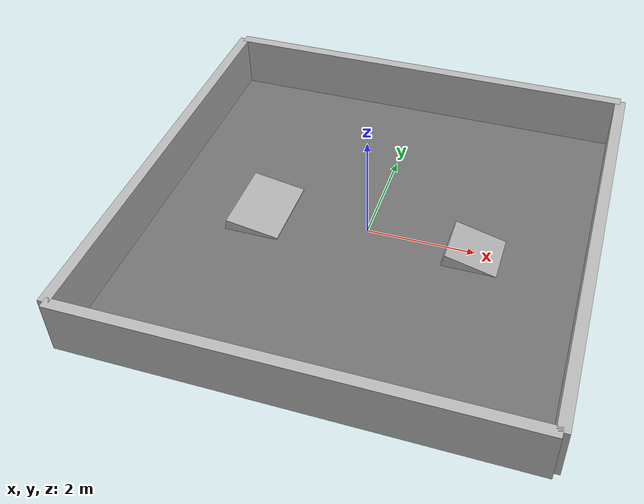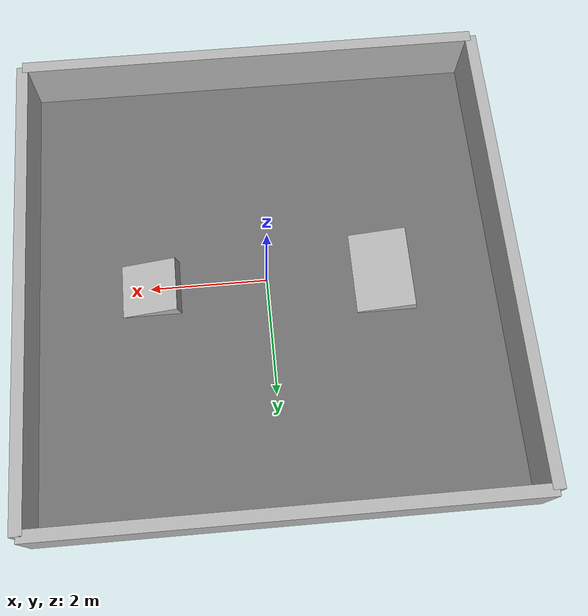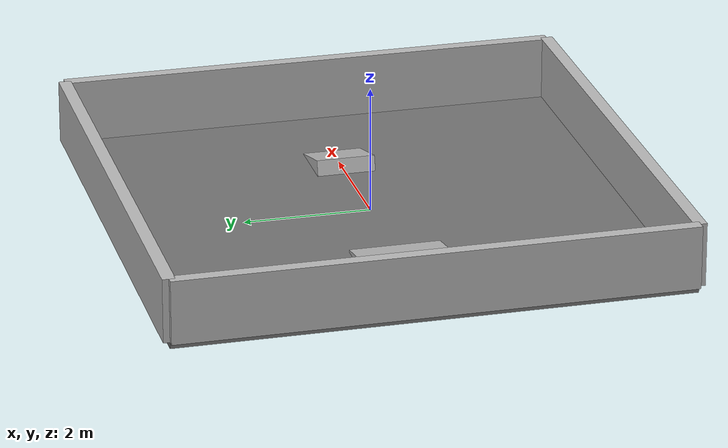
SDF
<sdf version='1.10'>
  <world name='empty'>
    <!-- Physics: realistic & consistent on basic machines -->
    <physics name="ode_cpu" type="ode">
      <!-- 500 Hz sim tick; good balance for CPU-only -->
      <max_step_size>0.002</max_step_size>
      <real_time_update_rate>500</real_time_update_rate>
      <real_time_factor>1.0</real_time_factor>
      <ode>
        <solver>
          <type>quick</type>
          <iters>50</iters>
          <sor>1.3</sor>
        </solver>
        <!-- Contact params tuned for stable, non-bouncy flips -->
        <constraints>
          <cfm>0.0</cfm>
          <erp>0.2</erp>
        </constraints>
      </ode>
    </physics>

    <plugin name='gz::sim::systems::Physics' filename='gz-sim-physics-system'/>
    <plugin name='gz::sim::systems::UserCommands' filename='gz-sim-user-commands-system'/>
    <plugin name='gz::sim::systems::SceneBroadcaster' filename='gz-sim-scene-broadcaster-system'/>
    <plugin name='gz::sim::systems::Contact' filename='gz-sim-contact-system'/>

     <!-- Earth gravity -->
    <gravity>0 0 -9.81</gravity>

    <magnetic_field>5.5644999999999998e-06 2.2875799999999999e-05 -4.2388400000000002e-05</magnetic_field>
    <atmosphere type='adiabatic'/>

    <!-- Lighting: simple, stable; shadows off by default -->
    <scene>
      <ambient>0.5 0.5 0.5 1</ambient>
      <background>0.7 0.7 0.75 1</background>
      <shadows>false</shadows>
    </scene>

    <!-- 8m x 8m arena floor with realistic surface params -->
    <model name="arena_floor">
      <static>true</static>
      <pose>0 0 -0.05 0 0 0</pose>
      <link name="floor">
        <collision name="col">
          <geometry><box><size>8 8 0.1</size></box></geometry>
          <surface>
            <!-- Rubber-ish tires on painted plywood/concrete -->
            <friction>
              <ode>
                <mu>0.9</mu>
                <mu2>0.9</mu2>
                <fdir1>1 0 0</fdir1>
              </ode>
            </friction>
            <bounce>
              <restitution_coefficient>0.03</restitution_coefficient>
              <threshold>1e3</threshold>
            </bounce>
            <contact>
              <ode>
                <kp>1e6</kp>
                <kd>1e3</kd>
                <max_vel>1.0</max_vel>
                <min_depth>0.001</min_depth>
              </ode>
            </contact>
          </surface>
        </collision>
        <visual name="vis">
          <geometry><box><size>8 8 0.1</size></box></geometry>
          <material>
            <ambient>0.35 0.35 0.35 1</ambient>
            <diffuse>0.45 0.45 0.45 1</diffuse>
          </material>
        </visual>
      </link>
    </model>
    <!-- Perimeter walls (1.0m high) -->
    <model name="wall_north">
      <static>true</static>
      <link name="link">
        <pose>0 4 0.5 0 0 0</pose>
        <collision name="col"><geometry><box><size>8 0.2 1.0</size></box></geometry></collision>
        <visual name="vis"><geometry><box><size>8 0.2 1.0</size></box></geometry></visual>
      </link>
    </model>
    <model name="wall_south">
      <static>true</static>
      <link name="link">
        <pose>0 -4 0.5 0 0 0</pose>
        <collision name="col"><geometry><box><size>8 0.2 1.0</size></box></geometry></collision>
        <visual name="vis"><geometry><box><size>8 0.2 1.0</size></box></geometry></visual>
      </link>
    </model>
    <model name="wall_east">
      <static>true</static>
      <link name="link">
        <pose>4 0 0.5 0 0 0</pose>
        <collision name="col"><geometry><box><size>0.2 8 1.0</size></box></geometry></collision>
        <visual name="vis"><geometry><box><size>0.2 8 1.0</size></box></geometry></visual>
      </link>
    </model>
    <model name="wall_west">
      <static>true</static>
      <link name="link">
        <pose>-4 0 0.5 0 0 0</pose>
        <collision name="col"><geometry><box><size>0.2 8 1.0</size></box></geometry></collision>
        <visual name="vis"><geometry><box><size>0.2 8 1.0</size></box></geometry></visual>
      </link>
    </model>

    <!-- Gentle ramps: 10° and 15°, climbable, simple collision -->
    <model name="ramp_10_deg">
      <static>true</static>
      <link name="link">
        <!-- pitch ≈ 10° (0.1745 rad) -->
        <pose>-2 0 0 0 0.1745 0</pose>
        <collision name="col">
          <!-- width x length x height -->
          <geometry><box><size>1.0 1.42 0.25</size></box></geometry>
        </collision>
        <visual name="vis"><geometry><box><size>1.0 1.42 0.25</size></box></geometry></visual>
      </link>
    </model>

    <model name="ramp_15_deg">
      <static>true</static>
      <link name="link">
        <!-- pitch ≈ 15° (0.2618 rad) -->
        <pose>2 0 0 0 0.2618 0</pose>
        <collision name="col">
          <geometry><box><size>1.0 0.93 0.25</size></box></geometry>
        </collision>
        <visual name="vis"><geometry><box><size>1.0 0.93 0.25</size></box></geometry></visual>
      </link>
    </model>

    <light name='sun' type='directional'>
      <pose>0 0 10 0 0 0</pose>
      <cast_shadows>true</cast_shadows>
      <intensity>1</intensity>
      <direction>-0.5 0.10000000000000001 -0.90000000000000002</direction>
      <diffuse>0.800000012 0.800000012 0.800000012 1</diffuse>
      <specular>0.200000003 0.200000003 0.200000003 1</specular>
      <attenuation>
        <range>1000</range>
        <linear>0.01</linear>
        <constant>0.90000000000000002</constant>
        <quadratic>0.001</quadratic>
      </attenuation>
      <spot>
        <inner_angle>0</inner_angle>
        <outer_angle>0</outer_angle>
        <falloff>0</falloff>
      </spot>
    </light>
  </world>
</sdf>
